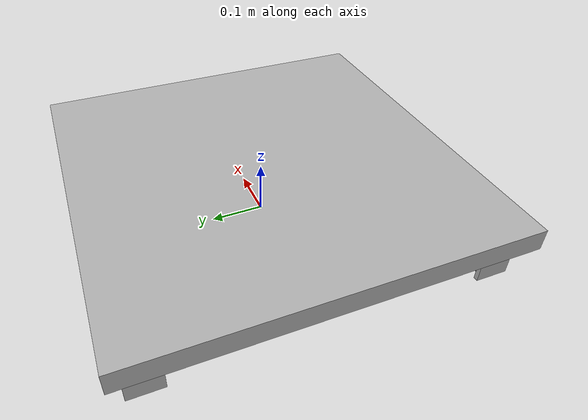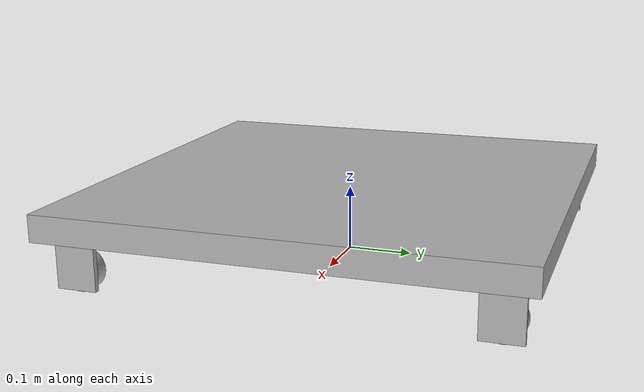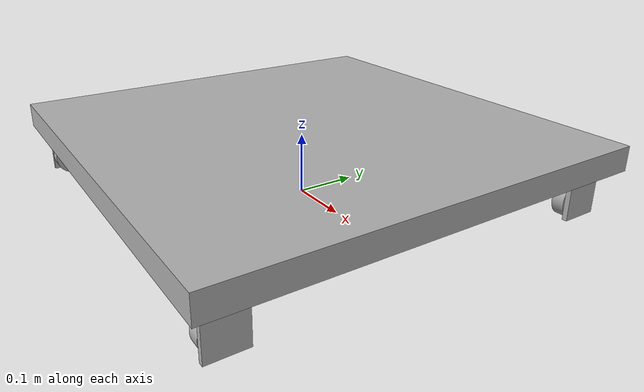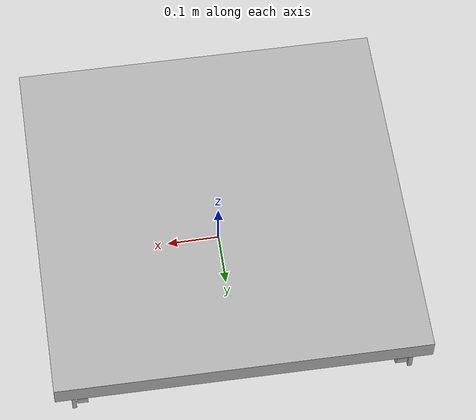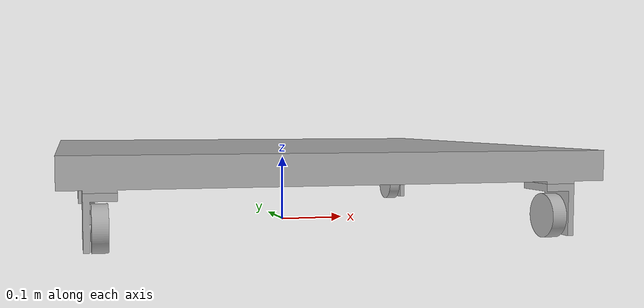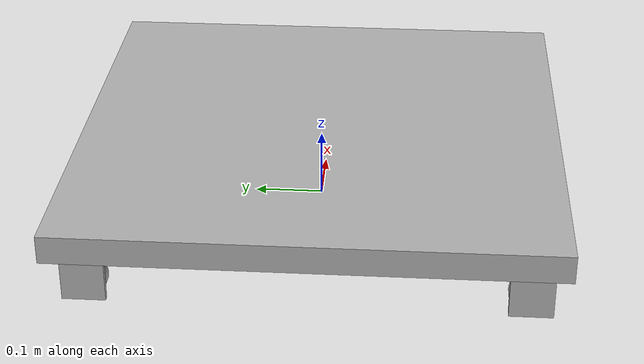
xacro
<?xml version="1.0" ?>
<robot name="swerve" xmlns:xacro="http://www.ros.org/wiki/xacro">

<xacro:include filename="$(find swerve_description)/urdf/materials.xacro" />
<xacro:include filename="$(find swerve_description)/urdf/swerve.trans" />
<xacro:include filename="$(find swerve_description)/urdf/swerve.gazebo" />

<link name='base_footprint'>
</link>

<link name="base_link">
  <inertial>
    <origin rpy="0 0 0" xyz="0.0 0.0 0.0999450325732899"/>
    <mass value="154.23679999999996"/>
    <inertia ixx="6.337347" ixy="0.0" ixz="-0.0" iyy="6.337285" iyz="0.0" izz="12.633221"/>
  </inertial>
  <visual>
    <origin rpy="0 0 0" xyz="0 0 0"/>
    <geometry>
      <mesh filename="package://swerve_description/meshes/base_link.stl" scale="0.001 0.001 0.001"/>
    </geometry>
    <material name="silver"/>
  </visual>
  <collision>
    <origin rpy="0 0 0" xyz="0 0 0"/>
    <geometry>
      <mesh filename="package://swerve_description/meshes/base_link.stl" scale="0.001 0.001 0.001"/>
    </geometry>
  </collision>
</link>

<link name="rhino_1_1">
  <inertial>
    <origin rpy="0 0 0" xyz="-0.008734014019799674 -6.161737786669619e-15 -0.024152928982157644"/>
    <mass value="0.41571307511653294"/>
    <inertia ixx="0.00032" ixy="-0.0" ixz="-5.8e-05" iyy="0.000248" iyz="-0.0" izz="0.000177"/>
  </inertial>
  <visual>
    <origin rpy="0 0 0" xyz="0.3 0.3 -0.075"/>
    <geometry>
      <mesh filename="package://swerve_description/meshes/rhino_1_1.stl" scale="0.001 0.001 0.001"/>
    </geometry>
    <material name="silver"/>
  </visual>
  <collision>
    <origin rpy="0 0 0" xyz="0.3 0.3 -0.075"/>
    <geometry>
      <mesh filename="package://swerve_description/meshes/rhino_1_1.stl" scale="0.001 0.001 0.001"/>
    </geometry>
  </collision>
</link>

<link name="wheel_1_1">
  <inertial>
    <origin rpy="0 0 0" xyz="0.010000000000000009 -5.551115123125783e-17 0.0"/>
    <mass value="0.44390704195223774"/>
    <inertia ixx="0.0002" ixy="0.0" ixz="-0.0" iyy="0.000115" iyz="-0.0" izz="0.000115"/>
  </inertial>
  <visual>
    <origin rpy="0 0 0" xyz="0.31 0.3 -0.03"/>
    <geometry>
      <mesh filename="package://swerve_description/meshes/wheel_1_1.stl" scale="0.001 0.001 0.001"/>
    </geometry>
    <material name="silver"/>
  </visual>
  <collision>
    <origin rpy="0 0 0" xyz="0.31 0.3 -0.03"/>
    <geometry>
      <mesh filename="package://swerve_description/meshes/wheel_1_1.stl" scale="0.001 0.001 0.001"/>
    </geometry>
  </collision>
</link>

<link name="rhino_2_1">
  <inertial>
    <origin rpy="0 0 0" xyz="-0.008734014019799674 6.161737786669619e-15 -0.024152928982157637"/>
    <mass value="0.41571307511653294"/>
    <inertia ixx="0.00032" ixy="0.0" ixz="-5.8e-05" iyy="0.000248" iyz="0.0" izz="0.000177"/>
  </inertial>
  <visual>
    <origin rpy="0 0 0" xyz="0.3 -0.3 -0.075"/>
    <geometry>
      <mesh filename="package://swerve_description/meshes/rhino_2_1.stl" scale="0.001 0.001 0.001"/>
    </geometry>
    <material name="silver"/>
  </visual>
  <collision>
    <origin rpy="0 0 0" xyz="0.3 -0.3 -0.075"/>
    <geometry>
      <mesh filename="package://swerve_description/meshes/rhino_2_1.stl" scale="0.001 0.001 0.001"/>
    </geometry>
  </collision>
</link>

<link name="wheel_2_1">
  <inertial>
    <origin rpy="0 0 0" xyz="0.010000000000000009 5.551115123125783e-17 0.0"/>
    <mass value="0.44390704195223774"/>
    <inertia ixx="0.0002" ixy="-0.0" ixz="-0.0" iyy="0.000115" iyz="-0.0" izz="0.000115"/>
  </inertial>
  <visual>
    <origin rpy="0 0 0" xyz="0.31 -0.3 -0.03"/>
    <geometry>
      <mesh filename="package://swerve_description/meshes/wheel_2_1.stl" scale="0.001 0.001 0.001"/>
    </geometry>
    <material name="silver"/>
  </visual>
  <collision>
    <origin rpy="0 0 0" xyz="0.31 -0.3 -0.03"/>
    <geometry>
      <mesh filename="package://swerve_description/meshes/wheel_2_1.stl" scale="0.001 0.001 0.001"/>
    </geometry>
  </collision>
</link>

<link name="rhino_3_1">
  <inertial>
    <origin rpy="0 0 0" xyz="0.008734014019799674 6.161737786669619e-15 -0.024152928982157644"/>
    <mass value="0.41571307511653294"/>
    <inertia ixx="0.00032" ixy="-0.0" ixz="5.8e-05" iyy="0.000248" iyz="0.0" izz="0.000177"/>
  </inertial>
  <visual>
    <origin rpy="0 0 0" xyz="-0.3 -0.3 -0.075"/>
    <geometry>
      <mesh filename="package://swerve_description/meshes/rhino_3_1.stl" scale="0.001 0.001 0.001"/>
    </geometry>
    <material name="silver"/>
  </visual>
  <collision>
    <origin rpy="0 0 0" xyz="-0.3 -0.3 -0.075"/>
    <geometry>
      <mesh filename="package://swerve_description/meshes/rhino_3_1.stl" scale="0.001 0.001 0.001"/>
    </geometry>
  </collision>
</link>

<link name="wheel_3_1">
  <inertial>
    <origin rpy="0 0 0" xyz="-0.010000000000000009 5.551115123125783e-17 0.0"/>
    <mass value="0.44390704195223774"/>
    <inertia ixx="0.0002" ixy="0.0" ixz="0.0" iyy="0.000115" iyz="0.0" izz="0.000115"/>
  </inertial>
  <visual>
    <origin rpy="0 0 0" xyz="-0.31 -0.3 -0.03"/>
    <geometry>
      <mesh filename="package://swerve_description/meshes/wheel_3_1.stl" scale="0.001 0.001 0.001"/>
    </geometry>
    <material name="silver"/>
  </visual>
  <collision>
    <origin rpy="0 0 0" xyz="-0.31 -0.3 -0.03"/>
    <geometry>
      <mesh filename="package://swerve_description/meshes/wheel_3_1.stl" scale="0.001 0.001 0.001"/>
    </geometry>
  </collision>
</link>

<link name="rhino_4_1">
  <inertial>
    <origin rpy="0 0 0" xyz="0.008734014019799674 -6.161737786669619e-15 -0.024152928982157637"/>
    <mass value="0.41571307511653294"/>
    <inertia ixx="0.00032" ixy="0.0" ixz="5.8e-05" iyy="0.000248" iyz="-0.0" izz="0.000177"/>
  </inertial>
  <visual>
    <origin rpy="0 0 0" xyz="-0.3 0.3 -0.075"/>
    <geometry>
      <mesh filename="package://swerve_description/meshes/rhino_4_1.stl" scale="0.001 0.001 0.001"/>
    </geometry>
    <material name="silver"/>
  </visual>
  <collision>
    <origin rpy="0 0 0" xyz="-0.3 0.3 -0.075"/>
    <geometry>
      <mesh filename="package://swerve_description/meshes/rhino_4_1.stl" scale="0.001 0.001 0.001"/>
    </geometry>
  </collision>
</link>

<link name="wheel_4_1">
  <inertial>
    <origin rpy="0 0 0" xyz="-0.010000000000000009 -5.551115123125783e-17 0.0"/>
    <mass value="0.44390704195223774"/>
    <inertia ixx="0.0002" ixy="-0.0" ixz="0.0" iyy="0.000115" iyz="0.0" izz="0.000115"/>
  </inertial>
  <visual>
    <origin rpy="0 0 0" xyz="-0.31 0.3 -0.03"/>
    <geometry>
      <mesh filename="package://swerve_description/meshes/wheel_4_1.stl" scale="0.001 0.001 0.001"/>
    </geometry>
    <material name="silver"/>
  </visual>
  <collision>
    <origin rpy="0 0 0" xyz="-0.31 0.3 -0.03"/>
    <geometry>
      <mesh filename="package://swerve_description/meshes/wheel_4_1.stl" scale="0.001 0.001 0.001"/>
    </geometry>
  </collision>
</link>

<joint name="footprint_joint" type="fixed">
  <origin rpy="0 0 0" xyz="0 0 0"/>
  <parent link="base_footprint"/>
  <child link="base_link"/>
</joint>

<joint name="Rev1" type="continuous">
  <origin rpy="0 0 0" xyz="-0.3 -0.3 0.075"/>
  <parent link="base_link"/>
  <child link="rhino_1_1"/>
  <axis xyz="0.0 0.0 1.0"/>
</joint>

<joint name="Rev2" type="continuous">
  <origin rpy="0 0 0" xyz="-0.01 0.0 -0.045"/>
  <parent link="rhino_1_1"/>
  <child link="wheel_1_1"/>
  <axis xyz="1.0 0.0 0.0"/>
</joint>

<joint name="Rev3" type="continuous">
  <origin rpy="0 0 0" xyz="-0.3 0.3 0.075"/>
  <parent link="base_link"/>
  <child link="rhino_2_1"/>
  <axis xyz="0.0 0.0 1.0"/>
</joint>

<joint name="Rev4" type="continuous">
  <origin rpy="0 0 0" xyz="-0.01 0.0 -0.045"/>
  <parent link="rhino_2_1"/>
  <child link="wheel_2_1"/>
  <axis xyz="1.0 0.0 0.0"/>
</joint>

<joint name="Rev5" type="continuous">
  <origin rpy="0 0 0" xyz="0.3 0.3 0.075"/>
  <parent link="base_link"/>
  <child link="rhino_3_1"/>
  <axis xyz="0.0 0.0 1.0"/>
</joint>

<joint name="Rev6" type="continuous">
  <origin rpy="0 0 0" xyz="0.01 0.0 -0.045"/>
  <parent link="rhino_3_1"/>
  <child link="wheel_3_1"/>
  <axis xyz="1.0 0.0 0.0"/>
</joint>

<joint name="Rev7" type="continuous">
  <origin rpy="0 0 0" xyz="0.3 -0.3 0.075"/>
  <parent link="base_link"/>
  <child link="rhino_4_1"/>
  <axis xyz="0.0 0.0 1.0"/>
</joint>

<joint name="Rev8" type="continuous">
  <origin rpy="0 0 0" xyz="0.01 0.0 -0.045"/>
  <parent link="rhino_4_1"/>
  <child link="wheel_4_1"/>
  <axis xyz="1.0 0.0 0.0"/>
</joint>

</robot>

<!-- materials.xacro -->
<robot name="swerve" xmlns:xacro="http://www.ros.org/wiki/xacro" >

<material name="silver">
  <color rgba="0.700 0.700 0.700 1.000"/>
</material>

</robot>

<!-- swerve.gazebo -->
<robot name="swerve" xmlns:xacro="http://www.ros.org/wiki/xacro" >

<xacro:property name="body_color" value="Gazebo/Silver" />

<gazebo>
    <plugin name="gazebo_ros_control" filename="libgazebo_ros_control.so">
      <robotNamespace>/</robotNamespace>
      <robotSimType>gazebo_ros_control/DefaultRobotHWSim</robotSimType>
    </plugin>
</gazebo>

<gazebo reference="base_link">
  <material>${body_color}</material>
  <mu1>0.2</mu1>
  <mu2>0.2</mu2>
  <selfCollide>true</selfCollide>
  <gravity>true</gravity>
</gazebo>

<gazebo reference="rhino_1_1">
  <material>${body_color}</material>
  <mu1>0.2</mu1>
  <mu2>0.2</mu2>
  <selfCollide>true</selfCollide>
</gazebo>

<gazebo reference="wheel_1_1">
  <material>${body_color}</material>
  <mu1>0.2</mu1>
  <mu2>0.2</mu2>
  <selfCollide>true</selfCollide>
</gazebo>

<gazebo reference="rhino_2_1">
  <material>${body_color}</material>
  <mu1>0.2</mu1>
  <mu2>0.2</mu2>
  <selfCollide>true</selfCollide>
</gazebo>

<gazebo reference="wheel_2_1">
  <material>${body_color}</material>
  <mu1>0.2</mu1>
  <mu2>0.2</mu2>
  <selfCollide>true</selfCollide>
</gazebo>

<gazebo reference="rhino_3_1">
  <material>${body_color}</material>
  <mu1>0.2</mu1>
  <mu2>0.2</mu2>
  <selfCollide>true</selfCollide>
</gazebo>

<gazebo reference="wheel_3_1">
  <material>${body_color}</material>
  <mu1>0.2</mu1>
  <mu2>0.2</mu2>
  <selfCollide>true</selfCollide>
</gazebo>

<gazebo reference="rhino_4_1">
  <material>${body_color}</material>
  <mu1>0.2</mu1>
  <mu2>0.2</mu2>
  <selfCollide>true</selfCollide>
</gazebo>

<gazebo reference="wheel_4_1">
  <material>${body_color}</material>
  <mu1>0.2</mu1>
  <mu2>0.2</mu2>
  <selfCollide>true</selfCollide>
</gazebo>

<gazebo>
    <plugin name="ground_truth" filename="libgazebo_ros_p3d.so">
      <alwaysOn>true</alwaysOn>
      <updateRate>50.0</updateRate>
      <gaussianNoise>0.01</gaussianNoise>
      <bodyName>base_footprint</bodyName>
      <topicName>odomw</topicName>
    </plugin>
</gazebo>

</robot>
